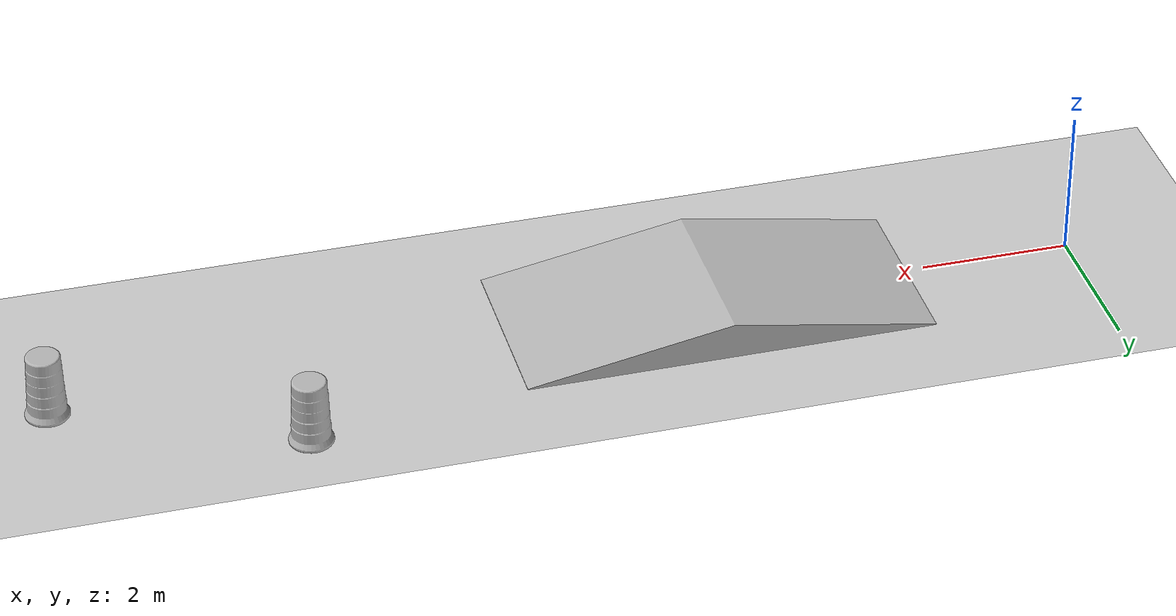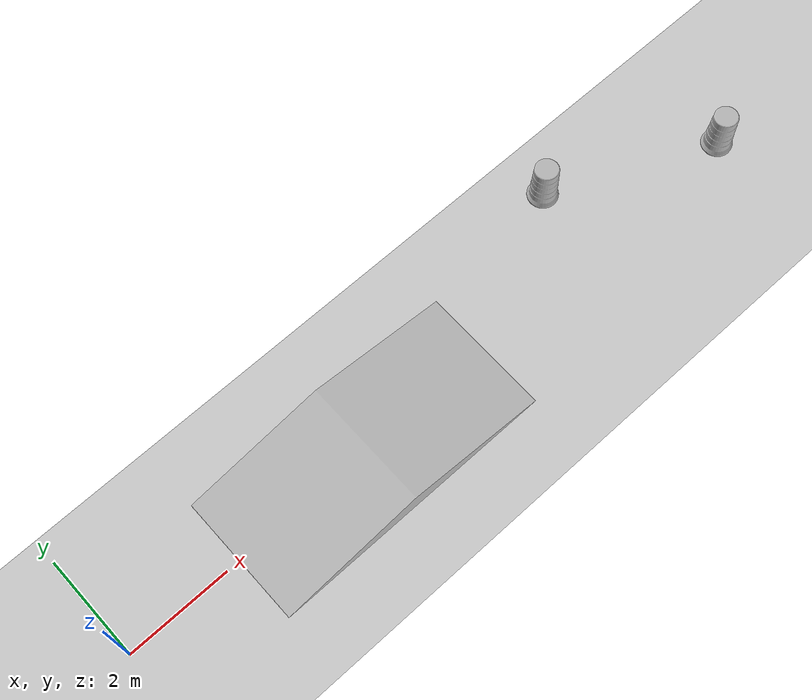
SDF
<?xml version="1.0" ?>
<sdf version="1.4">
  <world name="default">
    <scene>
      <sky>
      </sky>
      <ambient>1.0 1.0 1.0 1.0</ambient>
      <shadows>false</shadows>
    </scene>

    <!-- A global light source -->
    <include>
      <uri>model://urdf/models/sun</uri>
    </include>
    <!-- A ground plane -->
    <include>
      <uri>model://urdf/models/ramp_lane</uri>
      <pose>8.0 0.0 0.0 0.0 0.0 0.0</pose>
    </include> -->
    <!-- barrels -->
    <include>
      <uri>model://urdf/models/barrels_low</uri>
      <name>barrel_0</name> <!-- THE NAME MUST BE UNIQUE-->
      <pose>10.624624 1.53 0 0 -0 0</pose>
    </include>
    <include>
      <uri>model://urdf/models/barrels_low</uri>
      <name>barrel_1</name> <!-- THE NAME MUST BE UNIQUE-->
      <pose>13.742264 0.145766 0 0 -0 0</pose>
    </include>
    <!-- Ramp -->
    <include>
      <uri>model://urdf/models/ramp</uri>
      <name>ramp_1</name> <!-- THE NAME MUST BE UNIQUE-->
      <pose>5 0 0 0 -0 0</pose>
    </include>
    <physics type="ode">
      <max_step_size>0.0005</max_step_size>
      <real_time_update_rate>2000</real_time_update_rate>
    </physics>
  </world>
</sdf>

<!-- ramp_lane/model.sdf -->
<sdf version="1.5">
  <model name="grass_plane">
    <static>true</static>
    <link name="link">
      <collision name="collision">
        <geometry>
          <plane>
            <normal>0 0 1</normal>
            <size>20 5</size>
          </plane>
        </geometry>
        <surface>
          <friction>
            <ode>
              <mu>100</mu>
              <mu2>50</mu2>
            </ode>
          </friction>
        </surface>
      </collision>
      <visual name="visual">
        <cast_shadows>false</cast_shadows>
        <geometry>
          <plane>
            <normal>0 0 1</normal>
            <size>20 5</size>
          </plane>
        </geometry>
        <material>
          <script>
            <uri>model://urdf/gazebo.material</uri>
            <name>Gazebo/Texture_ramp_lane</name>
          </script>
        </material>
      </visual>
    </link>
  </model>
</sdf>

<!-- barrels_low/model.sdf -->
<sdf version="1.5">
  <model name='construction_barrel'>
    <link name='link'>
      <gravity>1</gravity>
      <inertial>
        <mass>500</mass>
        <inertia>
          <ixx>51.2096</ixx>
          <iyy>51.2096</iyy>
          <izz>25</izz>
          <ixy>0</ixy>
          <ixz>0</ixz>
          <iyz>0</iyz>
        </inertia>
      </inertial>
      <collision name='collision'>
        <pose> 0 0 0.5 0 0 0 </pose>
        <geometry>
           <cylinder>
             <radius>0.3</radius>
             <length>1.0</length>
           </cylinder>
        </geometry>
        <max_contacts>10</max_contacts>
        <surface>
          <contact>
            <ode/>
          </contact>
          <bounce/>
          <friction>
            <torsional>
              <ode/>
            </torsional>
            <ode/>
          </friction>
        </surface>
      </collision>
      <visual name='visual'>
        <geometry>
          <mesh>
            <uri>model://barrel/meshes/barrel.dae</uri>
            <scale>1 1 1</scale>
          </mesh>
        </geometry>
      </visual>
      <self_collide>0</self_collide>
      <kinematic>0</kinematic>
    </link>
  </model>
</sdf>

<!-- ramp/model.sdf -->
<sdf version="1.5">
  <model name='ramp'>
    <static>true</static>
    <link name='link'>
      <collision name='collision'>
        <geometry>
          <mesh>
            <uri>model://ramp/meshes/ramp.dae</uri>
            <scale>1 1 1</scale>
          </mesh>
        </geometry>
        <max_contacts>10</max_contacts>
        <surface>
          <friction>
            <ode>
              <mu>100</mu>
              <mu2>50</mu2>
            </ode>
          </friction>
        </surface>
      </collision>
      <visual name='visual'>
        <geometry>
          <mesh>
            <uri>model://ramp/meshes/ramp.dae</uri>
            <scale>1 1 1</scale>
          </mesh>
        </geometry>
      </visual>
      <self_collide>0</self_collide>
      <kinematic>0</kinematic>
    </link>
  </model>
</sdf>
